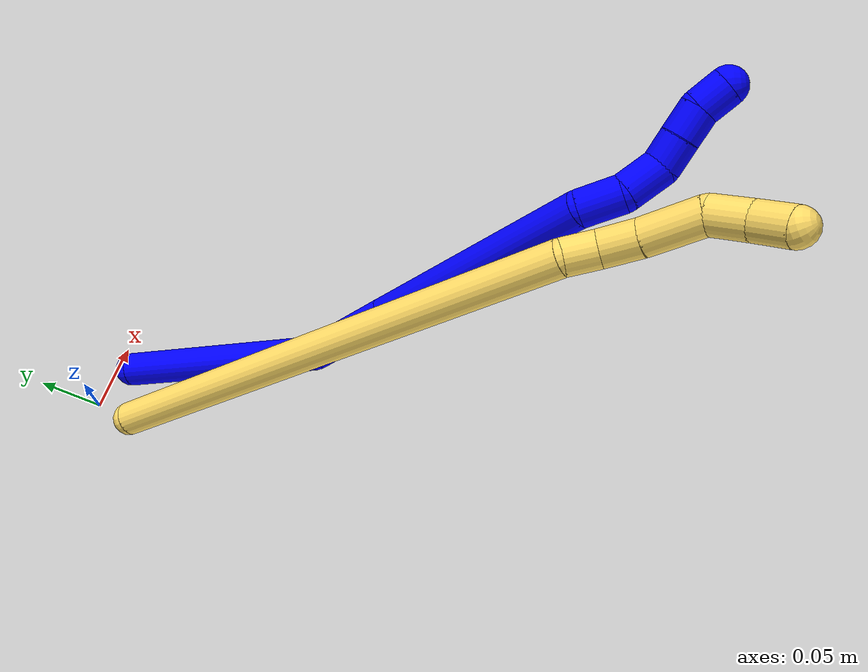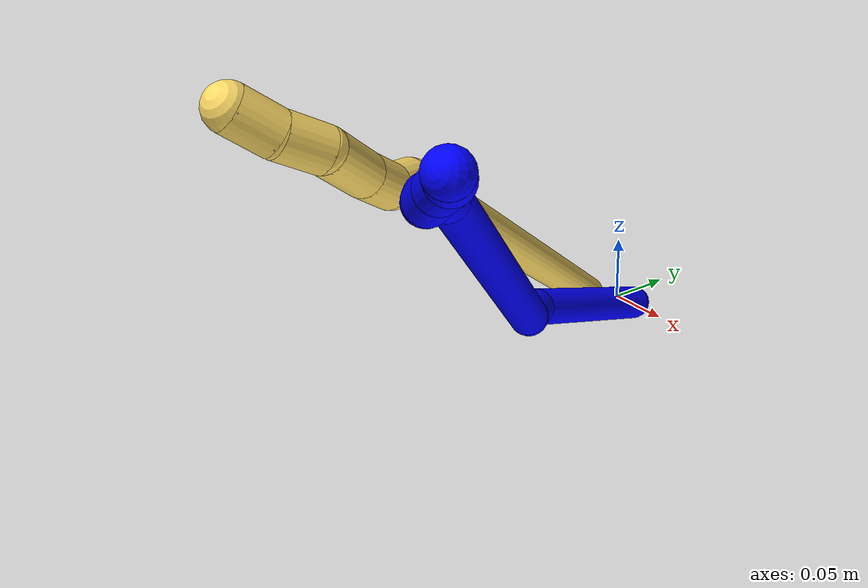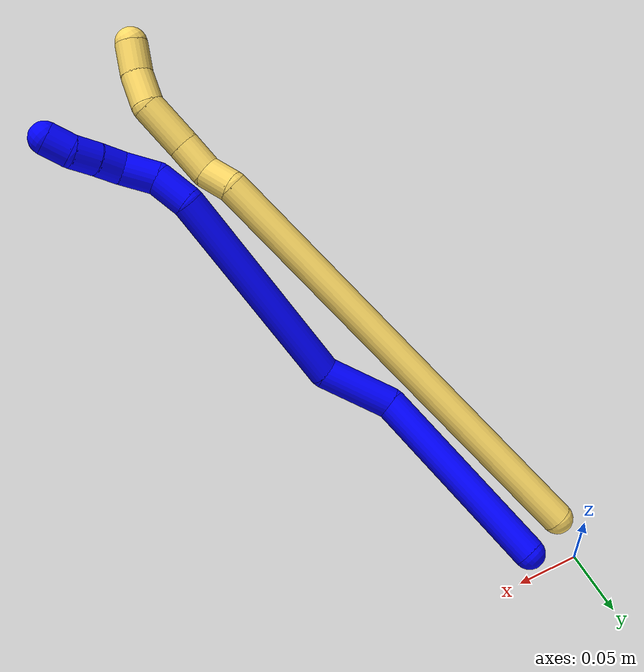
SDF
<sdf version="1.7">
 <world name="default">
  <model name="photoneo_s_sensor">
   <static>1</static>
   <pose>0 0 2 1.57079 1.57079 3.14159</pose>
   <link name="link">
    <inertial><mass>0.1</mass></inertial>
    <sensor name="sensor" type="depth">
     <update_rate>30</update_rate>
     <camera>
      <horizontal_fov>1.22</horizontal_fov>
      <image><width>1920</width><height>1200</height><format>B8G8R8</format></image>
      <clip><near>0.1</near><far>4</far></clip>
      <depth_camera><output>points</output></depth_camera>
     </camera>
     <plugin name="camera_plugin" filename="libgazebo_ros_depth_camera.so">
      <baseline>0.2</baseline>
      <alwaysOn>1</alwaysOn>
      <updateRate>0.0</updateRate>
      <cameraName>camera_ir</cameraName>
      <imageTopicName>/camera/color/image_raw</imageTopicName>
      <cameraInfoTopicName>/camera/color/camera_info</cameraInfoTopicName>
      <depthImageTopicName>/camera/depth/image_raw</depthImageTopicName>
      <depthImageCameraInfoTopicName>/camera/depth/camera_info</depthImageCameraInfoTopicName>
      <pointCloudTopicName>/camera/depth/points</pointCloudTopicName>
      <frameName>fr_optical</frameName>
      <pointCloudCutoff>0.1</pointCloudCutoff>
      <pointCloudCutoffMax>2.0</pointCloudCutoffMax>
      <distortionK1>0</distortionK1>
      <distortionK2>0</distortionK2>
      <distortionK3>0</distortionK3>
      <distortionT1>0</distortionT1>
      <distortionT2>0</distortionT2>
      <CxPrime>0</CxPrime>
      <Cx>0</Cx>
      <Cy>0</Cy>
      <focalLength>0</focalLength>
      <hackBaseline>0</hackBaseline>
     </plugin>
    </sensor>
   </link>
  </model>
  <model name="bin">
   <static>1</static>
   <link name="bottom">
    <collision name="collision-bottom">
     <pose>0 0 -0.01 0 -0 0</pose>
     <geometry><box><size>0.8 0.6 0.02</size></box></geometry>
     <surface>
      <friction><ode><mu>100</mu><mu2>100</mu2></ode></friction>
      <contact><collide_bitmask>65535</collide_bitmask></contact>
     </surface>
    </collision>
   </link>
   <link name="west_wall">
    <collision name="collision-west_wall">
     <pose>-0.41 0 0.1 0 -0 0</pose>
     <geometry><box><size>0.02 0.6 0.2</size></box></geometry>
     <surface>
      <friction><ode><mu>100</mu><mu2>100</mu2></ode></friction>
      <contact><collide_bitmask>65535</collide_bitmask></contact>
     </surface>
    </collision>
   </link>
   <link name="east_wall">
    <collision name="collision-east_wall">
     <pose>0.41 0 0.1 0 -0 0</pose>
     <geometry><box><size>0.02 0.6 0.2</size></box></geometry>
     <surface>
      <friction><ode><mu>100</mu><mu2>100</mu2></ode></friction>
      <contact><collide_bitmask>65535</collide_bitmask></contact>
     </surface>
    </collision>
   </link>
   <link name="south_wall">
    <collision name="collision-south_wall">
     <pose>0 -0.31 0.1 0 -0 0</pose>
     <geometry><box><size>0.8 0.02 0.2</size></box></geometry>
     <surface>
      <friction><ode><mu>100</mu><mu2>100</mu2></ode></friction>
      <contact><collide_bitmask>65535</collide_bitmask></contact>
     </surface>
    </collision>
   </link>
   <link name="north_wall">
    <collision name="collision-north_wall">
     <pose>0 0.31 0.1 0 -0 0</pose>
     <geometry><box><size>0.8 0.02 0.2</size></box></geometry>
     <surface>
      <friction><ode><mu>100</mu><mu2>100</mu2></ode></friction>
      <contact><collide_bitmask>65535</collide_bitmask></contact>
     </surface>
    </collision>
   </link>
  </model>
  <model name="1">
   <static>0</static>
   <link name="1">
    <collision name="collision-cylinder-e_1_1_4">
     <pose>0.001977 0.000999 0.077982 -0.012808 0.025342 -0.000162</pose>
     <geometry><cylinder><radius>0.0125</radius><length>0.156026</length></cylinder></geometry>
     <surface>
      <friction><ode><mu>1.16</mu><mu2>1.16</mu2><slip1>0</slip1><slip2>0</slip2></ode></friction>
      <contact><ode><kp>1e+06</kp><kd>1</kd><max_vel>0</max_vel><min_depth>0.001</min_depth></ode></contact>
     </surface>
    </collision>
    <visual name="visual-cylinder-e_1_1_4">
     <pose>0.001977 0.000999 0.077982 -0.012808 0.025342 -0.000162</pose>
     <geometry><cylinder><radius>0.0125</radius><length>0.156026</length></cylinder></geometry>
     <material><ambient>0 0 1 1</ambient></material>
    </visual>
    <collision name="collision-cylinder-e_2_4_5">
     <pose>-0.001584 -0.008308 0.182139 0.375085 -0.194358 -0.036996</pose>
     <geometry><cylinder><radius>0.0125</radius><length>0.057343</length></cylinder></geometry>
     <surface>
      <friction><ode><mu>1.16</mu><mu2>1.16</mu2><slip1>0</slip1><slip2>0</slip2></ode></friction>
      <contact><ode><kp>1e+06</kp><kd>1</kd><max_vel>0</max_vel><min_depth>0.001</min_depth></ode></contact>
     </surface>
    </collision>
    <visual name="visual-cylinder-e_2_4_5">
     <pose>-0.001584 -0.008308 0.182139 0.375085 -0.194358 -0.036996</pose>
     <geometry><cylinder><radius>0.0125</radius><length>0.057343</length></cylinder></geometry>
     <material><ambient>0 0 1 1</ambient></material>
    </visual>
    <collision name="collision-cylinder-e_3_5_6">
     <pose>0.018657 -0.047827 0.284251 0.367251 0.306836 0.05742</pose>
     <geometry><cylinder><radius>0.0125</radius><length>0.170694</length></cylinder></geometry>
     <surface>
      <friction><ode><mu>1.16</mu><mu2>1.16</mu2><slip1>0</slip1><slip2>0</slip2></ode></friction>
      <contact><ode><kp>1e+06</kp><kd>1</kd><max_vel>0</max_vel><min_depth>0.001</min_depth></ode></contact>
     </surface>
    </collision>
    <visual name="visual-cylinder-e_3_5_6">
     <pose>0.018657 -0.047827 0.284251 0.367251 0.306836 0.05742</pose>
     <geometry><cylinder><radius>0.0125</radius><length>0.170694</length></cylinder></geometry>
     <material><ambient>0 0 1 1</ambient></material>
    </visual>
    <collision name="collision-cylinder-e_4_6_7">
     <pose>0.043907 -0.079773 0.374139 0.193397 -0.037184 -0.003607</pose>
     <geometry><cylinder><radius>0.0125</radius><length>0.028456</length></cylinder></geometry>
     <surface>
      <friction><ode><mu>1.16</mu><mu2>1.16</mu2><slip1>0</slip1><slip2>0</slip2></ode></friction>
      <contact><ode><kp>1e+06</kp><kd>1</kd><max_vel>0</max_vel><min_depth>0.001</min_depth></ode></contact>
     </surface>
    </collision>
    <visual name="visual-cylinder-e_4_6_7">
     <pose>0.043907 -0.079773 0.374139 0.193397 -0.037184 -0.003607</pose>
     <geometry><cylinder><radius>0.0125</radius><length>0.028456</length></cylinder></geometry>
     <material><ambient>0 0 1 1</ambient></material>
    </visual>
    <collision name="collision-cylinder-e_5_7_8">
     <pose>0.038922 -0.088645 0.399502 0.493689 -0.331211 -0.084181</pose>
     <geometry><cylinder><radius>0.0125</radius><length>0.027402</length></cylinder></geometry>
     <surface>
      <friction><ode><mu>1.16</mu><mu2>1.16</mu2><slip1>0</slip1><slip2>0</slip2></ode></friction>
      <contact><ode><kp>1e+06</kp><kd>1</kd><max_vel>0</max_vel><min_depth>0.001</min_depth></ode></contact>
     </surface>
    </collision>
    <visual name="visual-cylinder-e_5_7_8">
     <pose>0.038922 -0.088645 0.399502 0.493689 -0.331211 -0.084181</pose>
     <geometry><cylinder><radius>0.0125</radius><length>0.027402</length></cylinder></geometry>
     <material><ambient>0 0 1 1</ambient></material>
    </visual>
    <collision name="collision-cylinder-e_6_8_9">
     <pose>0.034113 -0.102468 0.417305 0.876726 -0.03538 -0.016587</pose>
     <geometry><cylinder><radius>0.0125</radius><length>0.020004</length></cylinder></geometry>
     <surface>
      <friction><ode><mu>1.16</mu><mu2>1.16</mu2><slip1>0</slip1><slip2>0</slip2></ode></friction>
      <contact><ode><kp>1e+06</kp><kd>1</kd><max_vel>0</max_vel><min_depth>0.001</min_depth></ode></contact>
     </surface>
    </collision>
    <visual name="visual-cylinder-e_6_8_9">
     <pose>0.034113 -0.102468 0.417305 0.876726 -0.03538 -0.016587</pose>
     <geometry><cylinder><radius>0.0125</radius><length>0.020004</length></cylinder></geometry>
     <material><ambient>0 0 1 1</ambient></material>
    </visual>
    <collision name="collision-cylinder-e_7_9_10">
     <pose>0.032837 -0.117777 0.430141 0.869326 -0.092154 -0.042809</pose>
     <geometry><cylinder><radius>0.0125</radius><length>0.02005</length></cylinder></geometry>
     <surface>
      <friction><ode><mu>1.16</mu><mu2>1.16</mu2><slip1>0</slip1><slip2>0</slip2></ode></friction>
      <contact><ode><kp>1e+06</kp><kd>1</kd><max_vel>0</max_vel><min_depth>0.001</min_depth></ode></contact>
     </surface>
    </collision>
    <visual name="visual-cylinder-e_7_9_10">
     <pose>0.032837 -0.117777 0.430141 0.869326 -0.092154 -0.042809</pose>
     <geometry><cylinder><radius>0.0125</radius><length>0.02005</length></cylinder></geometry>
     <material><ambient>0 0 1 1</ambient></material>
    </visual>
    <collision name="collision-cylinder-e_8_10_2">
     <pose>0.031144 -0.130547 0.445138 0.541412 -0.076978 -0.021373</pose>
     <geometry><cylinder><radius>0.0125</radius><length>0.020024</length></cylinder></geometry>
     <surface>
      <friction><ode><mu>1.16</mu><mu2>1.16</mu2><slip1>0</slip1><slip2>0</slip2></ode></friction>
      <contact><ode><kp>1e+06</kp><kd>1</kd><max_vel>0</max_vel><min_depth>0.001</min_depth></ode></contact>
     </surface>
    </collision>
    <visual name="visual-cylinder-e_8_10_2">
     <pose>0.031144 -0.130547 0.445138 0.541412 -0.076978 -0.021373</pose>
     <geometry><cylinder><radius>0.0125</radius><length>0.020024</length></cylinder></geometry>
     <material><ambient>0 0 1 1</ambient></material>
    </visual>
    <collision name="collision-sphere-2">
     <pose>0.030374 -0.135691 0.453693 0 -0 0</pose>
     <geometry><sphere><radius>0.0125</radius></sphere></geometry>
     <surface>
      <friction><ode><mu>1.16</mu><mu2>1.16</mu2><slip1>0</slip1><slip2>0</slip2></ode></friction>
      <contact><ode><kp>1e+06</kp><kd>1</kd><max_vel>0</max_vel><min_depth>0.001</min_depth></ode></contact>
     </surface>
    </collision>
    <visual name="visual-sphere-2">
     <pose>0.030374 -0.135691 0.453693 0 -0 0</pose>
     <geometry><sphere><radius>0.0125</radius></sphere></geometry>
     <material><ambient>0 0 1 1</ambient></material>
    </visual>
    <collision name="collision-sphere-10">
     <pose>0.031914 -0.125402 0.436583 0 -0 0</pose>
     <geometry><sphere><radius>0.0125</radius></sphere></geometry>
     <surface>
      <friction><ode><mu>1.16</mu><mu2>1.16</mu2><slip1>0</slip1><slip2>0</slip2></ode></friction>
      <contact><ode><kp>1e+06</kp><kd>1</kd><max_vel>0</max_vel><min_depth>0.001</min_depth></ode></contact>
     </surface>
    </collision>
    <visual name="visual-sphere-10">
     <pose>0.031914 -0.125402 0.436583 0 -0 0</pose>
     <geometry><sphere><radius>0.0125</radius></sphere></geometry>
     <material><ambient>0 0 1 1</ambient></material>
    </visual>
    <collision name="collision-sphere-9">
     <pose>0.033759 -0.110151 0.423699 0 -0 0</pose>
     <geometry><sphere><radius>0.0125</radius></sphere></geometry>
     <surface>
      <friction><ode><mu>1.16</mu><mu2>1.16</mu2><slip1>0</slip1><slip2>0</slip2></ode></friction>
      <contact><ode><kp>1e+06</kp><kd>1</kd><max_vel>0</max_vel><min_depth>0.001</min_depth></ode></contact>
     </surface>
    </collision>
    <visual name="visual-sphere-9">
     <pose>0.033759 -0.110151 0.423699 0 -0 0</pose>
     <geometry><sphere><radius>0.0125</radius></sphere></geometry>
     <material><ambient>0 0 1 1</ambient></material>
    </visual>
    <collision name="collision-sphere-4">
     <pose>0.003954 0.001998 0.155963 0 -0 0</pose>
     <geometry><sphere><radius>0.0125</radius></sphere></geometry>
     <surface>
      <friction><ode><mu>1.16</mu><mu2>1.16</mu2><slip1>0</slip1><slip2>0</slip2></ode></friction>
      <contact><ode><kp>1e+06</kp><kd>1</kd><max_vel>0</max_vel><min_depth>0.001</min_depth></ode></contact>
     </surface>
    </collision>
    <visual name="visual-sphere-4">
     <pose>0.003954 0.001998 0.155963 0 -0 0</pose>
     <geometry><sphere><radius>0.0125</radius></sphere></geometry>
     <material><ambient>0 0 1 1</ambient></material>
    </visual>
    <collision name="collision-sphere-1">
     <geometry><sphere><radius>0.0125</radius></sphere></geometry>
     <surface>
      <friction><ode><mu>1.16</mu><mu2>1.16</mu2><slip1>0</slip1><slip2>0</slip2></ode></friction>
      <contact><ode><kp>1e+06</kp><kd>1</kd><max_vel>0</max_vel><min_depth>0.001</min_depth></ode></contact>
     </surface>
    </collision>
    <visual name="visual-sphere-1">
     <geometry><sphere><radius>0.0125</radius></sphere></geometry>
     <material><ambient>0 0 1 1</ambient></material>
    </visual>
    <collision name="collision-sphere-8">
     <pose>0.034467 -0.094785 0.410911 0 -0 0</pose>
     <geometry><sphere><radius>0.0125</radius></sphere></geometry>
     <surface>
      <friction><ode><mu>1.16</mu><mu2>1.16</mu2><slip1>0</slip1><slip2>0</slip2></ode></friction>
      <contact><ode><kp>1e+06</kp><kd>1</kd><max_vel>0</max_vel><min_depth>0.001</min_depth></ode></contact>
     </surface>
    </collision>
    <visual name="visual-sphere-8">
     <pose>0.034467 -0.094785 0.410911 0 -0 0</pose>
     <geometry><sphere><radius>0.0125</radius></sphere></geometry>
     <material><ambient>0 0 1 1</ambient></material>
    </visual>
    <collision name="collision-sphere-5">
     <pose>-0.007122 -0.018615 0.208315 0 -0 0</pose>
     <geometry><sphere><radius>0.0125</radius></sphere></geometry>
     <surface>
      <friction><ode><mu>1.16</mu><mu2>1.16</mu2><slip1>0</slip1><slip2>0</slip2></ode></friction>
      <contact><ode><kp>1e+06</kp><kd>1</kd><max_vel>0</max_vel><min_depth>0.001</min_depth></ode></contact>
     </surface>
    </collision>
    <visual name="visual-sphere-5">
     <pose>-0.007122 -0.018615 0.208315 0 -0 0</pose>
     <geometry><sphere><radius>0.0125</radius></sphere></geometry>
     <material><ambient>0 0 1 1</ambient></material>
    </visual>
    <collision name="collision-sphere-6">
     <pose>0.044436 -0.07704 0.360186 0 -0 0</pose>
     <geometry><sphere><radius>0.0125</radius></sphere></geometry>
     <surface>
      <friction><ode><mu>1.16</mu><mu2>1.16</mu2><slip1>0</slip1><slip2>0</slip2></ode></friction>
      <contact><ode><kp>1e+06</kp><kd>1</kd><max_vel>0</max_vel><min_depth>0.001</min_depth></ode></contact>
     </surface>
    </collision>
    <visual name="visual-sphere-6">
     <pose>0.044436 -0.07704 0.360186 0 -0 0</pose>
     <geometry><sphere><radius>0.0125</radius></sphere></geometry>
     <material><ambient>0 0 1 1</ambient></material>
    </visual>
    <collision name="collision-sphere-7">
     <pose>0.043378 -0.082505 0.388092 0 -0 0</pose>
     <geometry><sphere><radius>0.0125</radius></sphere></geometry>
     <surface>
      <friction><ode><mu>1.16</mu><mu2>1.16</mu2><slip1>0</slip1><slip2>0</slip2></ode></friction>
      <contact><ode><kp>1e+06</kp><kd>1</kd><max_vel>0</max_vel><min_depth>0.001</min_depth></ode></contact>
     </surface>
    </collision>
    <visual name="visual-sphere-7">
     <pose>0.043378 -0.082505 0.388092 0 -0 0</pose>
     <geometry><sphere><radius>0.0125</radius></sphere></geometry>
     <material><ambient>0 0 1 1</ambient></material>
    </visual>
    <inertial>
     <pose>0.015365 -0.040418 0.237222 0 -0 0</pose>
     <mass>0.5</mass>
     <inertia>
      <ixx>0.000775</ixx>
      <ixy>0</ixy>
      <ixz>0</ixz>
      <iyy>0.000754</iyy>
      <iyz>0</iyz>
      <izz>5.6e-05</izz>
     </inertia>
    </inertial>
   </link>
   <pose>0.033823 -0.014105 0.011498 -0.965168 -0.919573 2.98989</pose>
  </model>
  <model name="5">
   <static>0</static>
   <link name="5">
    <collision name="collision-cylinder-e_1_1_4">
     <pose>0.016433 -0.044708 0.173552 0.252123 0.091438 0.011596</pose>
     <geometry><cylinder><radius>0.0125</radius><length>0.35994</length></cylinder></geometry>
     <surface>
      <friction><ode><mu>1.16</mu><mu2>1.16</mu2><slip1>0</slip1><slip2>0</slip2></ode></friction>
      <contact><ode><kp>1e+06</kp><kd>1</kd><max_vel>0</max_vel><min_depth>0.001</min_depth></ode></contact>
     </surface>
    </collision>
    <visual name="visual-cylinder-e_1_1_4">
     <pose>0.016433 -0.044708 0.173552 0.252123 0.091438 0.011596</pose>
     <geometry><cylinder><radius>0.0125</radius><length>0.35994</length></cylinder></geometry>
     <material><ambient>1 0.858824 0.4 1</ambient></material>
    </visual>
    <collision name="collision-cylinder-e_2_4_5">
     <pose>0.033177 -0.096435 0.356387 0.647413 0.026697 0.008958</pose>
     <geometry><cylinder><radius>0.0125</radius><length>0.023283</length></cylinder></geometry>
     <surface>
      <friction><ode><mu>1.16</mu><mu2>1.16</mu2><slip1>0</slip1><slip2>0</slip2></ode></friction>
      <contact><ode><kp>1e+06</kp><kd>1</kd><max_vel>0</max_vel><min_depth>0.001</min_depth></ode></contact>
     </surface>
    </collision>
    <visual name="visual-cylinder-e_2_4_5">
     <pose>0.033177 -0.096435 0.356387 0.647413 0.026697 0.008958</pose>
     <geometry><cylinder><radius>0.0125</radius><length>0.023283</length></cylinder></geometry>
     <material><ambient>1 0.858824 0.4 1</ambient></material>
    </visual>
    <collision name="collision-cylinder-e_3_5_6">
     <pose>0.03344 -0.106791 0.378361 0.257173 -0.003683 -0.000476</pose>
     <geometry><cylinder><radius>0.0125</radius><length>0.026245</length></cylinder></geometry>
     <surface>
      <friction><ode><mu>1.16</mu><mu2>1.16</mu2><slip1>0</slip1><slip2>0</slip2></ode></friction>
      <contact><ode><kp>1e+06</kp><kd>1</kd><max_vel>0</max_vel><min_depth>0.001</min_depth></ode></contact>
     </surface>
    </collision>
    <visual name="visual-cylinder-e_3_5_6">
     <pose>0.03344 -0.106791 0.378361 0.257173 -0.003683 -0.000476</pose>
     <geometry><cylinder><radius>0.0125</radius><length>0.026245</length></cylinder></geometry>
     <material><ambient>1 0.858824 0.4 1</ambient></material>
    </visual>
    <collision name="collision-cylinder-e_4_6_7">
     <pose>0.034713 -0.114407 0.41017 0.220123 0.067377 0.007448</pose>
     <geometry><cylinder><radius>0.0125</radius><length>0.039271</length></cylinder></geometry>
     <surface>
      <friction><ode><mu>1.16</mu><mu2>1.16</mu2><slip1>0</slip1><slip2>0</slip2></ode></friction>
      <contact><ode><kp>1e+06</kp><kd>1</kd><max_vel>0</max_vel><min_depth>0.001</min_depth></ode></contact>
     </surface>
    </collision>
    <visual name="visual-cylinder-e_4_6_7">
     <pose>0.034713 -0.114407 0.41017 0.220123 0.067377 0.007448</pose>
     <geometry><cylinder><radius>0.0125</radius><length>0.039271</length></cylinder></geometry>
     <material><ambient>1 0.858824 0.4 1</ambient></material>
    </visual>
    <collision name="collision-cylinder-e_5_7_8">
     <pose>0.030724 -0.120452 0.441147 0.147954 -0.417026 -0.03136</pose>
     <geometry><cylinder><radius>0.0125</radius><length>0.026226</length></cylinder></geometry>
     <surface>
      <friction><ode><mu>1.16</mu><mu2>1.16</mu2><slip1>0</slip1><slip2>0</slip2></ode></friction>
      <contact><ode><kp>1e+06</kp><kd>1</kd><max_vel>0</max_vel><min_depth>0.001</min_depth></ode></contact>
     </surface>
    </collision>
    <visual name="visual-cylinder-e_5_7_8">
     <pose>0.030724 -0.120452 0.441147 0.147954 -0.417026 -0.03136</pose>
     <geometry><cylinder><radius>0.0125</radius><length>0.026226</length></cylinder></geometry>
     <material><ambient>1 0.858824 0.4 1</ambient></material>
    </visual>
    <collision name="collision-cylinder-e_6_8_2">
     <pose>0.020128 -0.121359 0.464319 -0.075856 -0.435883 0.016807</pose>
     <geometry><cylinder><radius>0.0125</radius><length>0.025034</length></cylinder></geometry>
     <surface>
      <friction><ode><mu>1.16</mu><mu2>1.16</mu2><slip1>0</slip1><slip2>0</slip2></ode></friction>
      <contact><ode><kp>1e+06</kp><kd>1</kd><max_vel>0</max_vel><min_depth>0.001</min_depth></ode></contact>
     </surface>
    </collision>
    <visual name="visual-cylinder-e_6_8_2">
     <pose>0.020128 -0.121359 0.464319 -0.075856 -0.435883 0.016807</pose>
     <geometry><cylinder><radius>0.0125</radius><length>0.025034</length></cylinder></geometry>
     <material><ambient>1 0.858824 0.4 1</ambient></material>
    </visual>
    <collision name="collision-sphere-2">
     <pose>0.014843 -0.120499 0.475633 0 -0 0</pose>
     <geometry><sphere><radius>0.0125</radius></sphere></geometry>
     <surface>
      <friction><ode><mu>1.16</mu><mu2>1.16</mu2><slip1>0</slip1><slip2>0</slip2></ode></friction>
      <contact><ode><kp>1e+06</kp><kd>1</kd><max_vel>0</max_vel><min_depth>0.001</min_depth></ode></contact>
     </surface>
    </collision>
    <visual name="visual-sphere-2">
     <pose>0.014843 -0.120499 0.475633 0 -0 0</pose>
     <geometry><sphere><radius>0.0125</radius></sphere></geometry>
     <material><ambient>1 0.858824 0.4 1</ambient></material>
    </visual>
    <collision name="collision-sphere-4">
     <pose>0.032866 -0.089416 0.347105 0 -0 0</pose>
     <geometry><sphere><radius>0.0125</radius></sphere></geometry>
     <surface>
      <friction><ode><mu>1.16</mu><mu2>1.16</mu2><slip1>0</slip1><slip2>0</slip2></ode></friction>
      <contact><ode><kp>1e+06</kp><kd>1</kd><max_vel>0</max_vel><min_depth>0.001</min_depth></ode></contact>
     </surface>
    </collision>
    <visual name="visual-sphere-4">
     <pose>0.032866 -0.089416 0.347105 0 -0 0</pose>
     <geometry><sphere><radius>0.0125</radius></sphere></geometry>
     <material><ambient>1 0.858824 0.4 1</ambient></material>
    </visual>
    <collision name="collision-sphere-1">
     <geometry><sphere><radius>0.0125</radius></sphere></geometry>
     <surface>
      <friction><ode><mu>1.16</mu><mu2>1.16</mu2><slip1>0</slip1><slip2>0</slip2></ode></friction>
      <contact><ode><kp>1e+06</kp><kd>1</kd><max_vel>0</max_vel><min_depth>0.001</min_depth></ode></contact>
     </surface>
    </collision>
    <visual name="visual-sphere-1">
     <geometry><sphere><radius>0.0125</radius></sphere></geometry>
     <material><ambient>1 0.858824 0.4 1</ambient></material>
    </visual>
    <collision name="collision-sphere-8">
     <pose>0.025412 -0.122219 0.453005 0 -0 0</pose>
     <geometry><sphere><radius>0.0125</radius></sphere></geometry>
     <surface>
      <friction><ode><mu>1.16</mu><mu2>1.16</mu2><slip1>0</slip1><slip2>0</slip2></ode></friction>
      <contact><ode><kp>1e+06</kp><kd>1</kd><max_vel>0</max_vel><min_depth>0.001</min_depth></ode></contact>
     </surface>
    </collision>
    <visual name="visual-sphere-8">
     <pose>0.025412 -0.122219 0.453005 0 -0 0</pose>
     <geometry><sphere><radius>0.0125</radius></sphere></geometry>
     <material><ambient>1 0.858824 0.4 1</ambient></material>
    </visual>
    <collision name="collision-sphere-5">
     <pose>0.033488 -0.103454 0.36567 0 -0 0</pose>
     <geometry><sphere><radius>0.0125</radius></sphere></geometry>
     <surface>
      <friction><ode><mu>1.16</mu><mu2>1.16</mu2><slip1>0</slip1><slip2>0</slip2></ode></friction>
      <contact><ode><kp>1e+06</kp><kd>1</kd><max_vel>0</max_vel><min_depth>0.001</min_depth></ode></contact>
     </surface>
    </collision>
    <visual name="visual-sphere-5">
     <pose>0.033488 -0.103454 0.36567 0 -0 0</pose>
     <geometry><sphere><radius>0.0125</radius></sphere></geometry>
     <material><ambient>1 0.858824 0.4 1</ambient></material>
    </visual>
    <collision name="collision-sphere-6">
     <pose>0.033391 -0.110129 0.391052 0 -0 0</pose>
     <geometry><sphere><radius>0.0125</radius></sphere></geometry>
     <surface>
      <friction><ode><mu>1.16</mu><mu2>1.16</mu2><slip1>0</slip1><slip2>0</slip2></ode></friction>
      <contact><ode><kp>1e+06</kp><kd>1</kd><max_vel>0</max_vel><min_depth>0.001</min_depth></ode></contact>
     </surface>
    </collision>
    <visual name="visual-sphere-6">
     <pose>0.033391 -0.110129 0.391052 0 -0 0</pose>
     <geometry><sphere><radius>0.0125</radius></sphere></geometry>
     <material><ambient>1 0.858824 0.4 1</ambient></material>
    </visual>
    <collision name="collision-sphere-7">
     <pose>0.036035 -0.118684 0.429288 0 -0 0</pose>
     <geometry><sphere><radius>0.0125</radius></sphere></geometry>
     <surface>
      <friction><ode><mu>1.16</mu><mu2>1.16</mu2><slip1>0</slip1><slip2>0</slip2></ode></friction>
      <contact><ode><kp>1e+06</kp><kd>1</kd><max_vel>0</max_vel><min_depth>0.001</min_depth></ode></contact>
     </surface>
    </collision>
    <visual name="visual-sphere-7">
     <pose>0.036035 -0.118684 0.429288 0 -0 0</pose>
     <geometry><sphere><radius>0.0125</radius></sphere></geometry>
     <material><ambient>1 0.858824 0.4 1</ambient></material>
    </visual>
    <inertial>
     <pose>0.020476 -0.06366 0.239995 0 -0 0</pose>
     <mass>0.5</mass>
     <inertia>
      <ixx>0.003945</ixx>
      <ixy>0</ixy>
      <ixz>0</ixz>
      <iyy>0.003828</iyy>
      <iyz>0</iyz>
      <izz>0.000655</izz>
     </inertia>
    </inertial>
   </link>
   <pose>-0.003025 -0.030068 0.01149 0.73892 -0.244074 0.563996</pose>
  </model>
 </world>
</sdf>
